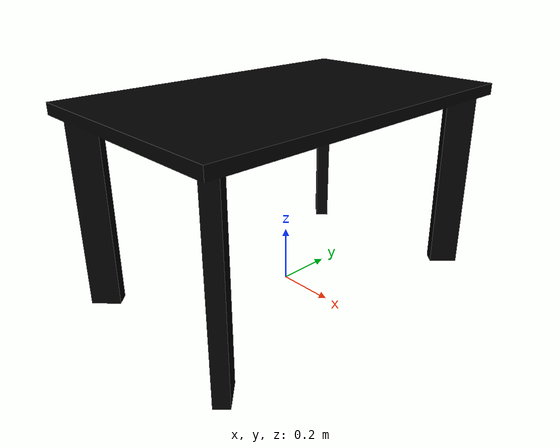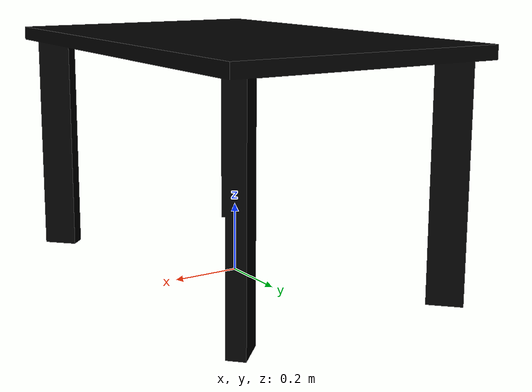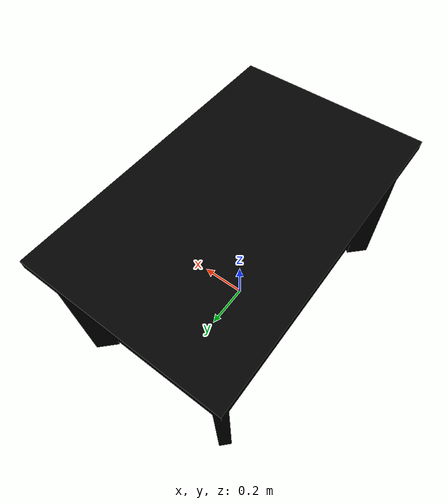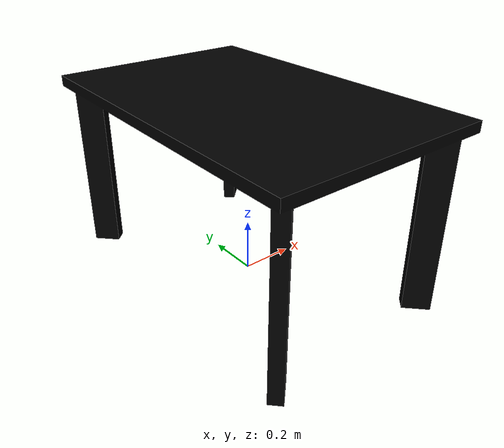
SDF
<?xml version='1.0'?>
<sdf version="1.4">
<model name="dummy_room">
  <pose>0 0 0 0 0 0</pose>
    <link name="link">
      <inertial>
        <mass>1.0</mass>
        <inertia>
          <ixx>0.083</ixx>
          <ixy>0.0</ixy>
          <ixz>0.0</ixz>
          <iyy>0.083</iyy>
          <iyz>0.0</iyz>
          <izz>0.083</izz>
        </inertia>
      </inertial>
      <collision name="collision">
        <geometry>
          <mesh>
            <uri>model://dummy_room/table.stl</uri>
          </mesh>
        </geometry>
      </collision>
      <visual name="visual">
        <geometry>
          <mesh>
            <uri>model://dummy_room/table.stl</uri>
          </mesh>
        </geometry>
        <!-- https://classic.gazebosim.org/tutorials?tut=color_model -->
        <material> <!-- LED material -->
          <ambient>0 0 0 1</ambient>
          <diffuse>0 0 0 1</diffuse>
          <specular>0 0 0 0</specular>
          <emissive>0 1 0 1</emissive>
        </material> <!-- End LED material -->
      </visual>
    </link>
  </model>
</sdf>
